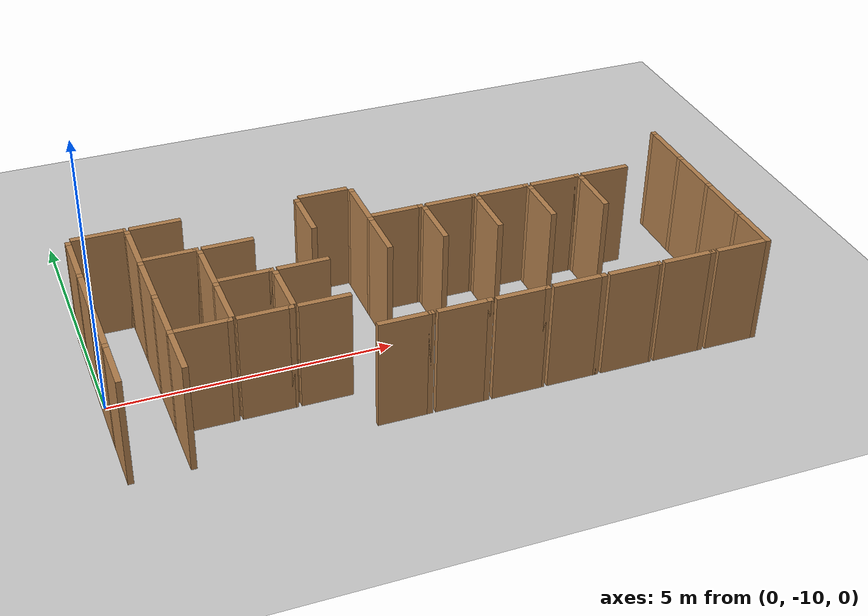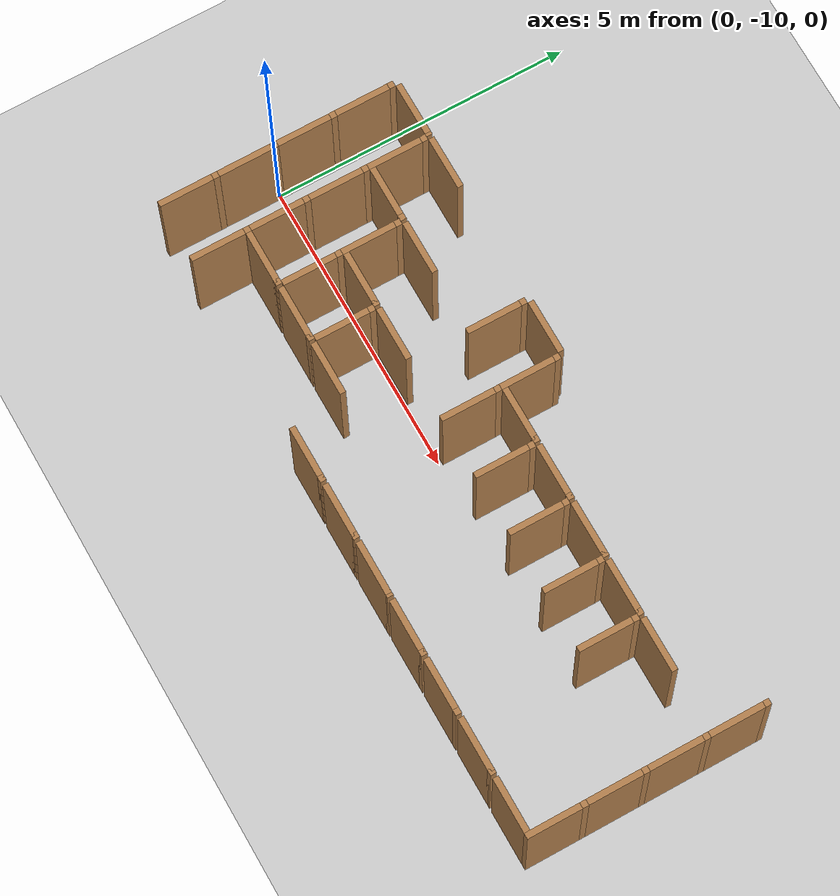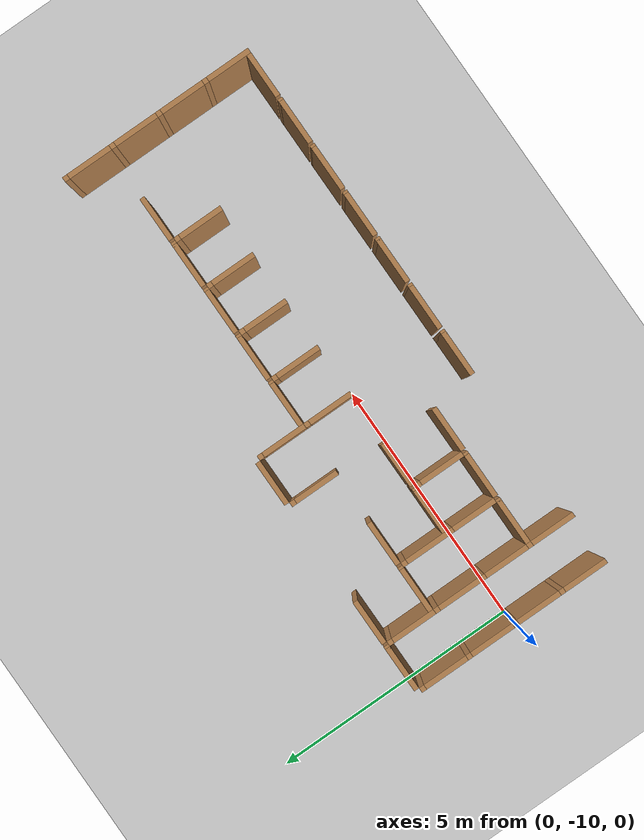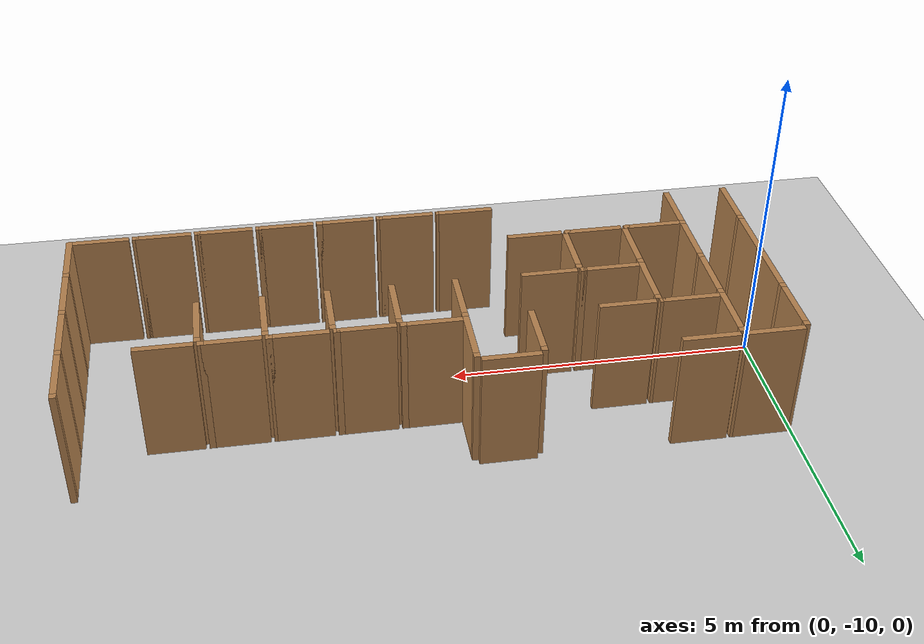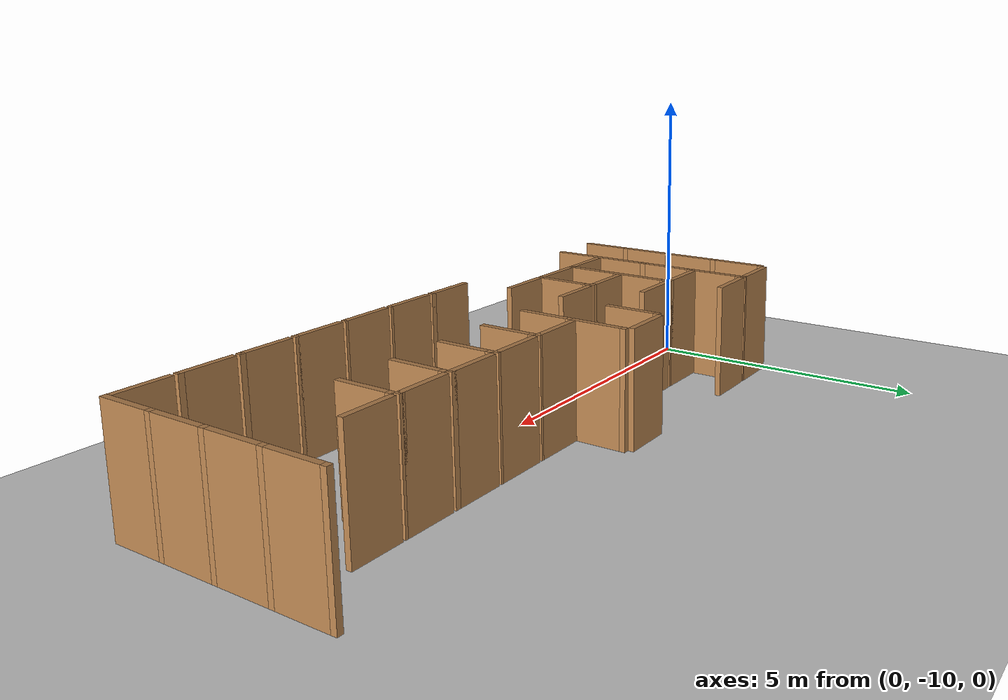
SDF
<sdf version="1.6">
 <world name="default">
  <include><uri>model://sun</uri></include>
  <model name="ground_plane">
   <static>true</static>
   <link name="link">
    <collision name="collision"><geometry><plane><size>12.0 12.0</size></plane></geometry></collision>
    <visual name="visual">
     <cast_shadows>false</cast_shadows>
     <geometry><plane><size>12.0 12.0</size></plane></geometry>
     <material>
      <script><uri>file://media/materials/scripts/gazebo.material</uri><name>Gazebo/Grey</name></script>
     </material>
    </visual>
   </link>
   <pose>6.0 -6.0 0 0 0 0</pose>
  </model>
  <model name="vwall_8_0">
   <pose>0.0 -8.5 1.0 0 0 0</pose>
   <link name="link">
    <collision name="collision"><geometry><box><size>0.1 0.9 2</size></box></geometry></collision>
    <visual name="visual">
     <geometry><box><size>0.1 0.9 2</size></box></geometry>
     <material>
      <script><uri>file://media/materials/scripts/gazebo.material</uri><name>Gazebo/Wood</name></script>
     </material>
    </visual>
   </link>
  </model>
  <model name="joint_0.0_-8.0">
   <pose>0.0 -8.0 1.0 0 0 0</pose>
   <link name="link">
    <collision name="collision"><geometry><box><size>0.1 0.1 2</size></box></geometry></collision>
    <visual name="visual">
     <geometry><box><size>0.1 0.1 2</size></box></geometry>
     <material>
      <script><uri>file://media/materials/scripts/gazebo.material</uri><name>Gazebo/Wood</name></script>
     </material>
    </visual>
   </link>
  </model>
  <model name="vwall_8_1">
   <pose>1.0 -8.5 1.0 0 0 0</pose>
   <link name="link">
    <collision name="collision"><geometry><box><size>0.1 0.9 2</size></box></geometry></collision>
    <visual name="visual">
     <geometry><box><size>0.1 0.9 2</size></box></geometry>
     <material>
      <script><uri>file://media/materials/scripts/gazebo.material</uri><name>Gazebo/Wood</name></script>
     </material>
    </visual>
   </link>
  </model>
  <model name="joint_1.0_-8.0">
   <pose>1.0 -8.0 1.0 0 0 0</pose>
   <link name="link">
    <collision name="collision"><geometry><box><size>0.1 0.1 2</size></box></geometry></collision>
    <visual name="visual">
     <geometry><box><size>0.1 0.1 2</size></box></geometry>
     <material>
      <script><uri>file://media/materials/scripts/gazebo.material</uri><name>Gazebo/Wood</name></script>
     </material>
    </visual>
   </link>
  </model>
  <model name="vwall_8_4">
   <pose>4.0 -8.5 1.0 0 0 0</pose>
   <link name="link">
    <collision name="collision"><geometry><box><size>0.1 0.9 2</size></box></geometry></collision>
    <visual name="visual">
     <geometry><box><size>0.1 0.9 2</size></box></geometry>
     <material>
      <script><uri>file://media/materials/scripts/gazebo.material</uri><name>Gazebo/Wood</name></script>
     </material>
    </visual>
   </link>
  </model>
  <model name="joint_4.0_-8.0">
   <pose>4.0 -8.0 1.0 0 0 0</pose>
   <link name="link">
    <collision name="collision"><geometry><box><size>0.1 0.1 2</size></box></geometry></collision>
    <visual name="visual">
     <geometry><box><size>0.1 0.1 2</size></box></geometry>
     <material>
      <script><uri>file://media/materials/scripts/gazebo.material</uri><name>Gazebo/Wood</name></script>
     </material>
    </visual>
   </link>
  </model>
  <model name="vwall_8_5">
   <pose>5.0 -8.5 1.0 0 0 0</pose>
   <link name="link">
    <collision name="collision"><geometry><box><size>0.1 0.9 2</size></box></geometry></collision>
    <visual name="visual">
     <geometry><box><size>0.1 0.9 2</size></box></geometry>
     <material>
      <script><uri>file://media/materials/scripts/gazebo.material</uri><name>Gazebo/Wood</name></script>
     </material>
    </visual>
   </link>
  </model>
  <model name="joint_5.0_-8.0">
   <pose>5.0 -8.0 1.0 0 0 0</pose>
   <link name="link">
    <collision name="collision"><geometry><box><size>0.1 0.1 2</size></box></geometry></collision>
    <visual name="visual">
     <geometry><box><size>0.1 0.1 2</size></box></geometry>
     <material>
      <script><uri>file://media/materials/scripts/gazebo.material</uri><name>Gazebo/Wood</name></script>
     </material>
    </visual>
   </link>
  </model>
  <model name="vwall_8_11">
   <pose>11.0 -8.5 1.0 0 0 0</pose>
   <link name="link">
    <collision name="collision"><geometry><box><size>0.1 0.9 2</size></box></geometry></collision>
    <visual name="visual">
     <geometry><box><size>0.1 0.9 2</size></box></geometry>
     <material>
      <script><uri>file://media/materials/scripts/gazebo.material</uri><name>Gazebo/Wood</name></script>
     </material>
    </visual>
   </link>
  </model>
  <model name="joint_11.0_-8.0">
   <pose>11.0 -8.0 1.0 0 0 0</pose>
   <link name="link">
    <collision name="collision"><geometry><box><size>0.1 0.1 2</size></box></geometry></collision>
    <visual name="visual">
     <geometry><box><size>0.1 0.1 2</size></box></geometry>
     <material>
      <script><uri>file://media/materials/scripts/gazebo.material</uri><name>Gazebo/Wood</name></script>
     </material>
    </visual>
   </link>
  </model>
  <model name="vwall_9_0">
   <pose>0.0 -9.5 1.0 0 0 0</pose>
   <link name="link">
    <collision name="collision"><geometry><box><size>0.1 0.9 2</size></box></geometry></collision>
    <visual name="visual">
     <geometry><box><size>0.1 0.9 2</size></box></geometry>
     <material>
      <script><uri>file://media/materials/scripts/gazebo.material</uri><name>Gazebo/Wood</name></script>
     </material>
    </visual>
   </link>
  </model>
  <model name="joint_0.0_-9.0">
   <pose>0.0 -9.0 1.0 0 0 0</pose>
   <link name="link">
    <collision name="collision"><geometry><box><size>0.1 0.1 2</size></box></geometry></collision>
    <visual name="visual">
     <geometry><box><size>0.1 0.1 2</size></box></geometry>
     <material>
      <script><uri>file://media/materials/scripts/gazebo.material</uri><name>Gazebo/Wood</name></script>
     </material>
    </visual>
   </link>
  </model>
  <model name="vwall_9_1">
   <pose>1.0 -9.5 1.0 0 0 0</pose>
   <link name="link">
    <collision name="collision"><geometry><box><size>0.1 0.9 2</size></box></geometry></collision>
    <visual name="visual">
     <geometry><box><size>0.1 0.9 2</size></box></geometry>
     <material>
      <script><uri>file://media/materials/scripts/gazebo.material</uri><name>Gazebo/Wood</name></script>
     </material>
    </visual>
   </link>
  </model>
  <model name="joint_1.0_-9.0">
   <pose>1.0 -9.0 1.0 0 0 0</pose>
   <link name="link">
    <collision name="collision"><geometry><box><size>0.1 0.1 2</size></box></geometry></collision>
    <visual name="visual">
     <geometry><box><size>0.1 0.1 2</size></box></geometry>
     <material>
      <script><uri>file://media/materials/scripts/gazebo.material</uri><name>Gazebo/Wood</name></script>
     </material>
    </visual>
   </link>
  </model>
  <model name="vwall_9_2">
   <pose>2.0 -9.5 1.0 0 0 0</pose>
   <link name="link">
    <collision name="collision"><geometry><box><size>0.1 0.9 2</size></box></geometry></collision>
    <visual name="visual">
     <geometry><box><size>0.1 0.9 2</size></box></geometry>
     <material>
      <script><uri>file://media/materials/scripts/gazebo.material</uri><name>Gazebo/Wood</name></script>
     </material>
    </visual>
   </link>
  </model>
  <model name="joint_2.0_-9.0">
   <pose>2.0 -9.0 1.0 0 0 0</pose>
   <link name="link">
    <collision name="collision"><geometry><box><size>0.1 0.1 2</size></box></geometry></collision>
    <visual name="visual">
     <geometry><box><size>0.1 0.1 2</size></box></geometry>
     <material>
      <script><uri>file://media/materials/scripts/gazebo.material</uri><name>Gazebo/Wood</name></script>
     </material>
    </visual>
   </link>
  </model>
  <model name="vwall_9_5">
   <pose>5.0 -9.5 1.0 0 0 0</pose>
   <link name="link">
    <collision name="collision"><geometry><box><size>0.1 0.9 2</size></box></geometry></collision>
    <visual name="visual">
     <geometry><box><size>0.1 0.9 2</size></box></geometry>
     <material>
      <script><uri>file://media/materials/scripts/gazebo.material</uri><name>Gazebo/Wood</name></script>
     </material>
    </visual>
   </link>
  </model>
  <model name="joint_5.0_-9.0">
   <pose>5.0 -9.0 1.0 0 0 0</pose>
   <link name="link">
    <collision name="collision"><geometry><box><size>0.1 0.1 2</size></box></geometry></collision>
    <visual name="visual">
     <geometry><box><size>0.1 0.1 2</size></box></geometry>
     <material>
      <script><uri>file://media/materials/scripts/gazebo.material</uri><name>Gazebo/Wood</name></script>
     </material>
    </visual>
   </link>
  </model>
  <model name="vwall_9_6">
   <pose>6.0 -9.5 1.0 0 0 0</pose>
   <link name="link">
    <collision name="collision"><geometry><box><size>0.1 0.9 2</size></box></geometry></collision>
    <visual name="visual">
     <geometry><box><size>0.1 0.9 2</size></box></geometry>
     <material>
      <script><uri>file://media/materials/scripts/gazebo.material</uri><name>Gazebo/Wood</name></script>
     </material>
    </visual>
   </link>
  </model>
  <model name="joint_6.0_-9.0">
   <pose>6.0 -9.0 1.0 0 0 0</pose>
   <link name="link">
    <collision name="collision"><geometry><box><size>0.1 0.1 2</size></box></geometry></collision>
    <visual name="visual">
     <geometry><box><size>0.1 0.1 2</size></box></geometry>
     <material>
      <script><uri>file://media/materials/scripts/gazebo.material</uri><name>Gazebo/Wood</name></script>
     </material>
    </visual>
   </link>
  </model>
  <model name="vwall_9_7">
   <pose>7.0 -9.5 1.0 0 0 0</pose>
   <link name="link">
    <collision name="collision"><geometry><box><size>0.1 0.9 2</size></box></geometry></collision>
    <visual name="visual">
     <geometry><box><size>0.1 0.9 2</size></box></geometry>
     <material>
      <script><uri>file://media/materials/scripts/gazebo.material</uri><name>Gazebo/Wood</name></script>
     </material>
    </visual>
   </link>
  </model>
  <model name="joint_7.0_-9.0">
   <pose>7.0 -9.0 1.0 0 0 0</pose>
   <link name="link">
    <collision name="collision"><geometry><box><size>0.1 0.1 2</size></box></geometry></collision>
    <visual name="visual">
     <geometry><box><size>0.1 0.1 2</size></box></geometry>
     <material>
      <script><uri>file://media/materials/scripts/gazebo.material</uri><name>Gazebo/Wood</name></script>
     </material>
    </visual>
   </link>
  </model>
  <model name="vwall_9_8">
   <pose>8.0 -9.5 1.0 0 0 0</pose>
   <link name="link">
    <collision name="collision"><geometry><box><size>0.1 0.9 2</size></box></geometry></collision>
    <visual name="visual">
     <geometry><box><size>0.1 0.9 2</size></box></geometry>
     <material>
      <script><uri>file://media/materials/scripts/gazebo.material</uri><name>Gazebo/Wood</name></script>
     </material>
    </visual>
   </link>
  </model>
  <model name="joint_8.0_-9.0">
   <pose>8.0 -9.0 1.0 0 0 0</pose>
   <link name="link">
    <collision name="collision"><geometry><box><size>0.1 0.1 2</size></box></geometry></collision>
    <visual name="visual">
     <geometry><box><size>0.1 0.1 2</size></box></geometry>
     <material>
      <script><uri>file://media/materials/scripts/gazebo.material</uri><name>Gazebo/Wood</name></script>
     </material>
    </visual>
   </link>
  </model>
  <model name="vwall_9_9">
   <pose>9.0 -9.5 1.0 0 0 0</pose>
   <link name="link">
    <collision name="collision"><geometry><box><size>0.1 0.9 2</size></box></geometry></collision>
    <visual name="visual">
     <geometry><box><size>0.1 0.9 2</size></box></geometry>
     <material>
      <script><uri>file://media/materials/scripts/gazebo.material</uri><name>Gazebo/Wood</name></script>
     </material>
    </visual>
   </link>
  </model>
  <model name="joint_9.0_-9.0">
   <pose>9.0 -9.0 1.0 0 0 0</pose>
   <link name="link">
    <collision name="collision"><geometry><box><size>0.1 0.1 2</size></box></geometry></collision>
    <visual name="visual">
     <geometry><box><size>0.1 0.1 2</size></box></geometry>
     <material>
      <script><uri>file://media/materials/scripts/gazebo.material</uri><name>Gazebo/Wood</name></script>
     </material>
    </visual>
   </link>
  </model>
  <model name="vwall_9_11">
   <pose>11.0 -9.5 1.0 0 0 0</pose>
   <link name="link">
    <collision name="collision"><geometry><box><size>0.1 0.9 2</size></box></geometry></collision>
    <visual name="visual">
     <geometry><box><size>0.1 0.9 2</size></box></geometry>
     <material>
      <script><uri>file://media/materials/scripts/gazebo.material</uri><name>Gazebo/Wood</name></script>
     </material>
    </visual>
   </link>
  </model>
  <model name="joint_11.0_-9.0">
   <pose>11.0 -9.0 1.0 0 0 0</pose>
   <link name="link">
    <collision name="collision"><geometry><box><size>0.1 0.1 2</size></box></geometry></collision>
    <visual name="visual">
     <geometry><box><size>0.1 0.1 2</size></box></geometry>
     <material>
      <script><uri>file://media/materials/scripts/gazebo.material</uri><name>Gazebo/Wood</name></script>
     </material>
    </visual>
   </link>
  </model>
  <model name="vwall_10_0">
   <pose>0.0 -10.5 1.0 0 0 0</pose>
   <link name="link">
    <collision name="collision"><geometry><box><size>0.1 0.9 2</size></box></geometry></collision>
    <visual name="visual">
     <geometry><box><size>0.1 0.9 2</size></box></geometry>
     <material>
      <script><uri>file://media/materials/scripts/gazebo.material</uri><name>Gazebo/Wood</name></script>
     </material>
    </visual>
   </link>
  </model>
  <model name="joint_0.0_-10.0">
   <pose>0.0 -10.0 1.0 0 0 0</pose>
   <link name="link">
    <collision name="collision"><geometry><box><size>0.1 0.1 2</size></box></geometry></collision>
    <visual name="visual">
     <geometry><box><size>0.1 0.1 2</size></box></geometry>
     <material>
      <script><uri>file://media/materials/scripts/gazebo.material</uri><name>Gazebo/Wood</name></script>
     </material>
    </visual>
   </link>
  </model>
  <model name="vwall_10_1">
   <pose>1.0 -10.5 1.0 0 0 0</pose>
   <link name="link">
    <collision name="collision"><geometry><box><size>0.1 0.9 2</size></box></geometry></collision>
    <visual name="visual">
     <geometry><box><size>0.1 0.9 2</size></box></geometry>
     <material>
      <script><uri>file://media/materials/scripts/gazebo.material</uri><name>Gazebo/Wood</name></script>
     </material>
    </visual>
   </link>
  </model>
  <model name="joint_1.0_-10.0">
   <pose>1.0 -10.0 1.0 0 0 0</pose>
   <link name="link">
    <collision name="collision"><geometry><box><size>0.1 0.1 2</size></box></geometry></collision>
    <visual name="visual">
     <geometry><box><size>0.1 0.1 2</size></box></geometry>
     <material>
      <script><uri>file://media/materials/scripts/gazebo.material</uri><name>Gazebo/Wood</name></script>
     </material>
    </visual>
   </link>
  </model>
  <model name="vwall_10_2">
   <pose>2.0 -10.5 1.0 0 0 0</pose>
   <link name="link">
    <collision name="collision"><geometry><box><size>0.1 0.9 2</size></box></geometry></collision>
    <visual name="visual">
     <geometry><box><size>0.1 0.9 2</size></box></geometry>
     <material>
      <script><uri>file://media/materials/scripts/gazebo.material</uri><name>Gazebo/Wood</name></script>
     </material>
    </visual>
   </link>
  </model>
  <model name="joint_2.0_-10.0">
   <pose>2.0 -10.0 1.0 0 0 0</pose>
   <link name="link">
    <collision name="collision"><geometry><box><size>0.1 0.1 2</size></box></geometry></collision>
    <visual name="visual">
     <geometry><box><size>0.1 0.1 2</size></box></geometry>
     <material>
      <script><uri>file://media/materials/scripts/gazebo.material</uri><name>Gazebo/Wood</name></script>
     </material>
    </visual>
   </link>
  </model>
  <model name="vwall_10_3">
   <pose>3.0 -10.5 1.0 0 0 0</pose>
   <link name="link">
    <collision name="collision"><geometry><box><size>0.1 0.9 2</size></box></geometry></collision>
    <visual name="visual">
     <geometry><box><size>0.1 0.9 2</size></box></geometry>
     <material>
      <script><uri>file://media/materials/scripts/gazebo.material</uri><name>Gazebo/Wood</name></script>
     </material>
    </visual>
   </link>
  </model>
  <model name="joint_3.0_-10.0">
   <pose>3.0 -10.0 1.0 0 0 0</pose>
   <link name="link">
    <collision name="collision"><geometry><box><size>0.1 0.1 2</size></box></geometry></collision>
    <visual name="visual">
     <geometry><box><size>0.1 0.1 2</size></box></geometry>
     <material>
      <script><uri>file://media/materials/scripts/gazebo.material</uri><name>Gazebo/Wood</name></script>
     </material>
    </visual>
   </link>
  </model>
  <model name="vwall_10_11">
   <pose>11.0 -10.5 1.0 0 0 0</pose>
   <link name="link">
    <collision name="collision"><geometry><box><size>0.1 0.9 2</size></box></geometry></collision>
    <visual name="visual">
     <geometry><box><size>0.1 0.9 2</size></box></geometry>
     <material>
      <script><uri>file://media/materials/scripts/gazebo.material</uri><name>Gazebo/Wood</name></script>
     </material>
    </visual>
   </link>
  </model>
  <model name="joint_11.0_-10.0">
   <pose>11.0 -10.0 1.0 0 0 0</pose>
   <link name="link">
    <collision name="collision"><geometry><box><size>0.1 0.1 2</size></box></geometry></collision>
    <visual name="visual">
     <geometry><box><size>0.1 0.1 2</size></box></geometry>
     <material>
      <script><uri>file://media/materials/scripts/gazebo.material</uri><name>Gazebo/Wood</name></script>
     </material>
    </visual>
   </link>
  </model>
  <model name="vwall_11_0">
   <pose>0.0 -11.5 1.0 0 0 0</pose>
   <link name="link">
    <collision name="collision"><geometry><box><size>0.1 0.9 2</size></box></geometry></collision>
    <visual name="visual">
     <geometry><box><size>0.1 0.9 2</size></box></geometry>
     <material>
      <script><uri>file://media/materials/scripts/gazebo.material</uri><name>Gazebo/Wood</name></script>
     </material>
    </visual>
   </link>
  </model>
  <model name="joint_0.0_-11.0">
   <pose>0.0 -11.0 1.0 0 0 0</pose>
   <link name="link">
    <collision name="collision"><geometry><box><size>0.1 0.1 2</size></box></geometry></collision>
    <visual name="visual">
     <geometry><box><size>0.1 0.1 2</size></box></geometry>
     <material>
      <script><uri>file://media/materials/scripts/gazebo.material</uri><name>Gazebo/Wood</name></script>
     </material>
    </visual>
   </link>
  </model>
  <model name="vwall_11_1">
   <pose>1.0 -11.5 1.0 0 0 0</pose>
   <link name="link">
    <collision name="collision"><geometry><box><size>0.1 0.9 2</size></box></geometry></collision>
    <visual name="visual">
     <geometry><box><size>0.1 0.9 2</size></box></geometry>
     <material>
      <script><uri>file://media/materials/scripts/gazebo.material</uri><name>Gazebo/Wood</name></script>
     </material>
    </visual>
   </link>
  </model>
  <model name="joint_1.0_-11.0">
   <pose>1.0 -11.0 1.0 0 0 0</pose>
   <link name="link">
    <collision name="collision"><geometry><box><size>0.1 0.1 2</size></box></geometry></collision>
    <visual name="visual">
     <geometry><box><size>0.1 0.1 2</size></box></geometry>
     <material>
      <script><uri>file://media/materials/scripts/gazebo.material</uri><name>Gazebo/Wood</name></script>
     </material>
    </visual>
   </link>
  </model>
  <model name="vwall_11_11">
   <pose>11.0 -11.5 1.0 0 0 0</pose>
   <link name="link">
    <collision name="collision"><geometry><box><size>0.1 0.9 2</size></box></geometry></collision>
    <visual name="visual">
     <geometry><box><size>0.1 0.9 2</size></box></geometry>
     <material>
      <script><uri>file://media/materials/scripts/gazebo.material</uri><name>Gazebo/Wood</name></script>
     </material>
    </visual>
   </link>
  </model>
  <model name="joint_11.0_-11.0">
   <pose>11.0 -11.0 1.0 0 0 0</pose>
   <link name="link">
    <collision name="collision"><geometry><box><size>0.1 0.1 2</size></box></geometry></collision>
    <visual name="visual">
     <geometry><box><size>0.1 0.1 2</size></box></geometry>
     <material>
      <script><uri>file://media/materials/scripts/gazebo.material</uri><name>Gazebo/Wood</name></script>
     </material>
    </visual>
   </link>
  </model>
  <model name="hwall_7_0">
   <pose>0.5 -7.9 1.0 0 0 0</pose>
   <link name="link">
    <collision name="collision"><geometry><box><size>0.9 0.1 2</size></box></geometry></collision>
    <visual name="visual">
     <geometry><box><size>0.9 0.1 2</size></box></geometry>
     <material>
      <script><uri>file://media/materials/scripts/gazebo.material</uri><name>Gazebo/Wood</name></script>
     </material>
    </visual>
   </link>
  </model>
  <model name="joint_0.95_-7.9">
   <pose>0.95 -7.9 1.0 0 0 0</pose>
   <link name="link">
    <collision name="collision"><geometry><box><size>0.1 0.1 2</size></box></geometry></collision>
    <visual name="visual">
     <geometry><box><size>0.1 0.1 2</size></box></geometry>
     <material>
      <script><uri>file://media/materials/scripts/gazebo.material</uri><name>Gazebo/Wood</name></script>
     </material>
    </visual>
   </link>
  </model>
  <model name="hwall_7_1">
   <pose>1.5 -7.9 1.0 0 0 0</pose>
   <link name="link">
    <collision name="collision"><geometry><box><size>0.9 0.1 2</size></box></geometry></collision>
    <visual name="visual">
     <geometry><box><size>0.9 0.1 2</size></box></geometry>
     <material>
      <script><uri>file://media/materials/scripts/gazebo.material</uri><name>Gazebo/Wood</name></script>
     </material>
    </visual>
   </link>
  </model>
  <model name="hwall_7_4">
   <pose>4.5 -7.9 1.0 0 0 0</pose>
   <link name="link">
    <collision name="collision"><geometry><box><size>0.9 0.1 2</size></box></geometry></collision>
    <visual name="visual">
     <geometry><box><size>0.9 0.1 2</size></box></geometry>
     <material>
      <script><uri>file://media/materials/scripts/gazebo.material</uri><name>Gazebo/Wood</name></script>
     </material>
    </visual>
   </link>
  </model>
  <model name="hwall_8_1">
   <pose>1.5 -8.9 1.0 0 0 0</pose>
   <link name="link">
    <collision name="collision"><geometry><box><size>0.9 0.1 2</size></box></geometry></collision>
    <visual name="visual">
     <geometry><box><size>0.9 0.1 2</size></box></geometry>
     <material>
      <script><uri>file://media/materials/scripts/gazebo.material</uri><name>Gazebo/Wood</name></script>
     </material>
    </visual>
   </link>
  </model>
  <model name="joint_1.95_-8.9">
   <pose>1.95 -8.9 1.0 0 0 0</pose>
   <link name="link">
    <collision name="collision"><geometry><box><size>0.1 0.1 2</size></box></geometry></collision>
    <visual name="visual">
     <geometry><box><size>0.1 0.1 2</size></box></geometry>
     <material>
      <script><uri>file://media/materials/scripts/gazebo.material</uri><name>Gazebo/Wood</name></script>
     </material>
    </visual>
   </link>
  </model>
  <model name="hwall_8_2">
   <pose>2.5 -8.9 1.0 0 0 0</pose>
   <link name="link">
    <collision name="collision"><geometry><box><size>0.9 0.1 2</size></box></geometry></collision>
    <visual name="visual">
     <geometry><box><size>0.9 0.1 2</size></box></geometry>
     <material>
      <script><uri>file://media/materials/scripts/gazebo.material</uri><name>Gazebo/Wood</name></script>
     </material>
    </visual>
   </link>
  </model>
  <model name="hwall_8_5">
   <pose>5.5 -8.9 1.0 0 0 0</pose>
   <link name="link">
    <collision name="collision"><geometry><box><size>0.9 0.1 2</size></box></geometry></collision>
    <visual name="visual">
     <geometry><box><size>0.9 0.1 2</size></box></geometry>
     <material>
      <script><uri>file://media/materials/scripts/gazebo.material</uri><name>Gazebo/Wood</name></script>
     </material>
    </visual>
   </link>
  </model>
  <model name="joint_5.95_-8.9">
   <pose>5.95 -8.9 1.0 0 0 0</pose>
   <link name="link">
    <collision name="collision"><geometry><box><size>0.1 0.1 2</size></box></geometry></collision>
    <visual name="visual">
     <geometry><box><size>0.1 0.1 2</size></box></geometry>
     <material>
      <script><uri>file://media/materials/scripts/gazebo.material</uri><name>Gazebo/Wood</name></script>
     </material>
    </visual>
   </link>
  </model>
  <model name="hwall_8_6">
   <pose>6.5 -8.9 1.0 0 0 0</pose>
   <link name="link">
    <collision name="collision"><geometry><box><size>0.9 0.1 2</size></box></geometry></collision>
    <visual name="visual">
     <geometry><box><size>0.9 0.1 2</size></box></geometry>
     <material>
      <script><uri>file://media/materials/scripts/gazebo.material</uri><name>Gazebo/Wood</name></script>
     </material>
    </visual>
   </link>
  </model>
  <model name="joint_6.95_-8.9">
   <pose>6.95 -8.9 1.0 0 0 0</pose>
   <link name="link">
    <collision name="collision"><geometry><box><size>0.1 0.1 2</size></box></geometry></collision>
    <visual name="visual">
     <geometry><box><size>0.1 0.1 2</size></box></geometry>
     <material>
      <script><uri>file://media/materials/scripts/gazebo.material</uri><name>Gazebo/Wood</name></script>
     </material>
    </visual>
   </link>
  </model>
  <model name="hwall_8_7">
   <pose>7.5 -8.9 1.0 0 0 0</pose>
   <link name="link">
    <collision name="collision"><geometry><box><size>0.9 0.1 2</size></box></geometry></collision>
    <visual name="visual">
     <geometry><box><size>0.9 0.1 2</size></box></geometry>
     <material>
      <script><uri>file://media/materials/scripts/gazebo.material</uri><name>Gazebo/Wood</name></script>
     </material>
    </visual>
   </link>
  </model>
  <model name="joint_7.95_-8.9">
   <pose>7.95 -8.9 1.0 0 0 0</pose>
   <link name="link">
    <collision name="collision"><geometry><box><size>0.1 0.1 2</size></box></geometry></collision>
    <visual name="visual">
     <geometry><box><size>0.1 0.1 2</size></box></geometry>
     <material>
      <script><uri>file://media/materials/scripts/gazebo.material</uri><name>Gazebo/Wood</name></script>
     </material>
    </visual>
   </link>
  </model>
  <model name="hwall_8_8">
   <pose>8.5 -8.9 1.0 0 0 0</pose>
   <link name="link">
    <collision name="collision"><geometry><box><size>0.9 0.1 2</size></box></geometry></collision>
    <visual name="visual">
     <geometry><box><size>0.9 0.1 2</size></box></geometry>
     <material>
      <script><uri>file://media/materials/scripts/gazebo.material</uri><name>Gazebo/Wood</name></script>
     </material>
    </visual>
   </link>
  </model>
  <model name="joint_8.95_-8.9">
   <pose>8.95 -8.9 1.0 0 0 0</pose>
   <link name="link">
    <collision name="collision"><geometry><box><size>0.1 0.1 2</size></box></geometry></collision>
    <visual name="visual">
     <geometry><box><size>0.1 0.1 2</size></box></geometry>
     <material>
      <script><uri>file://media/materials/scripts/gazebo.material</uri><name>Gazebo/Wood</name></script>
     </material>
    </visual>
   </link>
  </model>
  <model name="hwall_8_9">
   <pose>9.5 -8.9 1.0 0 0 0</pose>
   <link name="link">
    <collision name="collision"><geometry><box><size>0.9 0.1 2</size></box></geometry></collision>
    <visual name="visual">
     <geometry><box><size>0.9 0.1 2</size></box></geometry>
     <material>
      <script><uri>file://media/materials/scripts/gazebo.material</uri><name>Gazebo/Wood</name></script>
     </material>
    </visual>
   </link>
  </model>
  <model name="hwall_9_2">
   <pose>2.5 -9.9 1.0 0 0 0</pose>
   <link name="link">
    <collision name="collision"><geometry><box><size>0.9 0.1 2</size></box></geometry></collision>
    <visual name="visual">
     <geometry><box><size>0.9 0.1 2</size></box></geometry>
     <material>
      <script><uri>file://media/materials/scripts/gazebo.material</uri><name>Gazebo/Wood</name></script>
     </material>
    </visual>
   </link>
  </model>
  <model name="joint_2.95_-9.9">
   <pose>2.95 -9.9 1.0 0 0 0</pose>
   <link name="link">
    <collision name="collision"><geometry><box><size>0.1 0.1 2</size></box></geometry></collision>
    <visual name="visual">
     <geometry><box><size>0.1 0.1 2</size></box></geometry>
     <material>
      <script><uri>file://media/materials/scripts/gazebo.material</uri><name>Gazebo/Wood</name></script>
     </material>
    </visual>
   </link>
  </model>
  <model name="hwall_9_3">
   <pose>3.5 -9.9 1.0 0 0 0</pose>
   <link name="link">
    <collision name="collision"><geometry><box><size>0.9 0.1 2</size></box></geometry></collision>
    <visual name="visual">
     <geometry><box><size>0.9 0.1 2</size></box></geometry>
     <material>
      <script><uri>file://media/materials/scripts/gazebo.material</uri><name>Gazebo/Wood</name></script>
     </material>
    </visual>
   </link>
  </model>
  <model name="hwall_11_1">
   <pose>1.5 -11.0 1.0 0 0 0</pose>
   <link name="link">
    <collision name="collision"><geometry><box><size>0.9 0.1 2</size></box></geometry></collision>
    <visual name="visual">
     <geometry><box><size>0.9 0.1 2</size></box></geometry>
     <material>
      <script><uri>file://media/materials/scripts/gazebo.material</uri><name>Gazebo/Wood</name></script>
     </material>
    </visual>
   </link>
  </model>
  <model name="joint_1.95_-11.0">
   <pose>1.95 -11.0 1.0 0 0 0</pose>
   <link name="link">
    <collision name="collision"><geometry><box><size>0.1 0.1 2</size></box></geometry></collision>
    <visual name="visual">
     <geometry><box><size>0.1 0.1 2</size></box></geometry>
     <material>
      <script><uri>file://media/materials/scripts/gazebo.material</uri><name>Gazebo/Wood</name></script>
     </material>
    </visual>
   </link>
  </model>
  <model name="hwall_11_2">
   <pose>2.5 -11.0 1.0 0 0 0</pose>
   <link name="link">
    <collision name="collision"><geometry><box><size>0.9 0.1 2</size></box></geometry></collision>
    <visual name="visual">
     <geometry><box><size>0.9 0.1 2</size></box></geometry>
     <material>
      <script><uri>file://media/materials/scripts/gazebo.material</uri><name>Gazebo/Wood</name></script>
     </material>
    </visual>
   </link>
  </model>
  <model name="joint_2.95_-11.0">
   <pose>2.95 -11.0 1.0 0 0 0</pose>
   <link name="link">
    <collision name="collision"><geometry><box><size>0.1 0.1 2</size></box></geometry></collision>
    <visual name="visual">
     <geometry><box><size>0.1 0.1 2</size></box></geometry>
     <material>
      <script><uri>file://media/materials/scripts/gazebo.material</uri><name>Gazebo/Wood</name></script>
     </material>
    </visual>
   </link>
  </model>
  <model name="hwall_11_3">
   <pose>3.5 -11.0 1.0 0 0 0</pose>
   <link name="link">
    <collision name="collision"><geometry><box><size>0.9 0.1 2</size></box></geometry></collision>
    <visual name="visual">
     <geometry><box><size>0.9 0.1 2</size></box></geometry>
     <material>
      <script><uri>file://media/materials/scripts/gazebo.material</uri><name>Gazebo/Wood</name></script>
     </material>
    </visual>
   </link>
  </model>
  <model name="hwall_11_4">
   <pose>4.5 -11.9 1.0 0 0 0</pose>
   <link name="link">
    <collision name="collision"><geometry><box><size>0.9 0.1 2</size></box></geometry></collision>
    <visual name="visual">
     <geometry><box><size>0.9 0.1 2</size></box></geometry>
     <material>
      <script><uri>file://media/materials/scripts/gazebo.material</uri><name>Gazebo/Wood</name></script>
     </material>
    </visual>
   </link>
  </model>
  <model name="joint_4.95_-11.9">
   <pose>4.95 -11.9 1.0 0 0 0</pose>
   <link name="link">
    <collision name="collision"><geometry><box><size>0.1 0.1 2</size></box></geometry></collision>
    <visual name="visual">
     <geometry><box><size>0.1 0.1 2</size></box></geometry>
     <material>
      <script><uri>file://media/materials/scripts/gazebo.material</uri><name>Gazebo/Wood</name></script>
     </material>
    </visual>
   </link>
  </model>
  <model name="hwall_11_5">
   <pose>5.5 -11.9 1.0 0 0 0</pose>
   <link name="link">
    <collision name="collision"><geometry><box><size>0.9 0.1 2</size></box></geometry></collision>
    <visual name="visual">
     <geometry><box><size>0.9 0.1 2</size></box></geometry>
     <material>
      <script><uri>file://media/materials/scripts/gazebo.material</uri><name>Gazebo/Wood</name></script>
     </material>
    </visual>
   </link>
  </model>
  <model name="joint_5.95_-11.9">
   <pose>5.95 -11.9 1.0 0 0 0</pose>
   <link name="link">
    <collision name="collision"><geometry><box><size>0.1 0.1 2</size></box></geometry></collision>
    <visual name="visual">
     <geometry><box><size>0.1 0.1 2</size></box></geometry>
     <material>
      <script><uri>file://media/materials/scripts/gazebo.material</uri><name>Gazebo/Wood</name></script>
     </material>
    </visual>
   </link>
  </model>
  <model name="hwall_11_6">
   <pose>6.5 -11.9 1.0 0 0 0</pose>
   <link name="link">
    <collision name="collision"><geometry><box><size>0.9 0.1 2</size></box></geometry></collision>
    <visual name="visual">
     <geometry><box><size>0.9 0.1 2</size></box></geometry>
     <material>
      <script><uri>file://media/materials/scripts/gazebo.material</uri><name>Gazebo/Wood</name></script>
     </material>
    </visual>
   </link>
  </model>
  <model name="joint_6.95_-11.9">
   <pose>6.95 -11.9 1.0 0 0 0</pose>
   <link name="link">
    <collision name="collision"><geometry><box><size>0.1 0.1 2</size></box></geometry></collision>
    <visual name="visual">
     <geometry><box><size>0.1 0.1 2</size></box></geometry>
     <material>
      <script><uri>file://media/materials/scripts/gazebo.material</uri><name>Gazebo/Wood</name></script>
     </material>
    </visual>
   </link>
  </model>
  <model name="hwall_11_7">
   <pose>7.5 -11.9 1.0 0 0 0</pose>
   <link name="link">
    <collision name="collision"><geometry><box><size>0.9 0.1 2</size></box></geometry></collision>
    <visual name="visual">
     <geometry><box><size>0.9 0.1 2</size></box></geometry>
     <material>
      <script><uri>file://media/materials/scripts/gazebo.material</uri><name>Gazebo/Wood</name></script>
     </material>
    </visual>
   </link>
  </model>
  <model name="joint_7.95_-11.9">
   <pose>7.95 -11.9 1.0 0 0 0</pose>
   <link name="link">
    <collision name="collision"><geometry><box><size>0.1 0.1 2</size></box></geometry></collision>
    <visual name="visual">
     <geometry><box><size>0.1 0.1 2</size></box></geometry>
     <material>
      <script><uri>file://media/materials/scripts/gazebo.material</uri><name>Gazebo/Wood</name></script>
     </material>
    </visual>
   </link>
  </model>
  <model name="hwall_11_8">
   <pose>8.5 -11.9 1.0 0 0 0</pose>
   <link name="link">
    <collision name="collision"><geometry><box><size>0.9 0.1 2</size></box></geometry></collision>
    <visual name="visual">
     <geometry><box><size>0.9 0.1 2</size></box></geometry>
     <material>
      <script><uri>file://media/materials/scripts/gazebo.material</uri><name>Gazebo/Wood</name></script>
     </material>
    </visual>
   </link>
  </model>
  <model name="joint_8.95_-11.9">
   <pose>8.95 -11.9 1.0 0 0 0</pose>
   <link name="link">
    <collision name="collision"><geometry><box><size>0.1 0.1 2</size></box></geometry></collision>
    <visual name="visual">
     <geometry><box><size>0.1 0.1 2</size></box></geometry>
     <material>
      <script><uri>file://media/materials/scripts/gazebo.material</uri><name>Gazebo/Wood</name></script>
     </material>
    </visual>
   </link>
  </model>
  <model name="hwall_11_9">
   <pose>9.5 -11.9 1.0 0 0 0</pose>
   <link name="link">
    <collision name="collision"><geometry><box><size>0.9 0.1 2</size></box></geometry></collision>
    <visual name="visual">
     <geometry><box><size>0.9 0.1 2</size></box></geometry>
     <material>
      <script><uri>file://media/materials/scripts/gazebo.material</uri><name>Gazebo/Wood</name></script>
     </material>
    </visual>
   </link>
  </model>
  <model name="joint_9.95_-11.9">
   <pose>9.95 -11.9 1.0 0 0 0</pose>
   <link name="link">
    <collision name="collision"><geometry><box><size>0.1 0.1 2</size></box></geometry></collision>
    <visual name="visual">
     <geometry><box><size>0.1 0.1 2</size></box></geometry>
     <material>
      <script><uri>file://media/materials/scripts/gazebo.material</uri><name>Gazebo/Wood</name></script>
     </material>
    </visual>
   </link>
  </model>
  <model name="hwall_11_10">
   <pose>10.5 -11.9 1.0 0 0 0</pose>
   <link name="link">
    <collision name="collision"><geometry><box><size>0.9 0.1 2</size></box></geometry></collision>
    <visual name="visual">
     <geometry><box><size>0.9 0.1 2</size></box></geometry>
     <material>
      <script><uri>file://media/materials/scripts/gazebo.material</uri><name>Gazebo/Wood</name></script>
     </material>
    </visual>
   </link>
  </model>
 </world>
</sdf>
